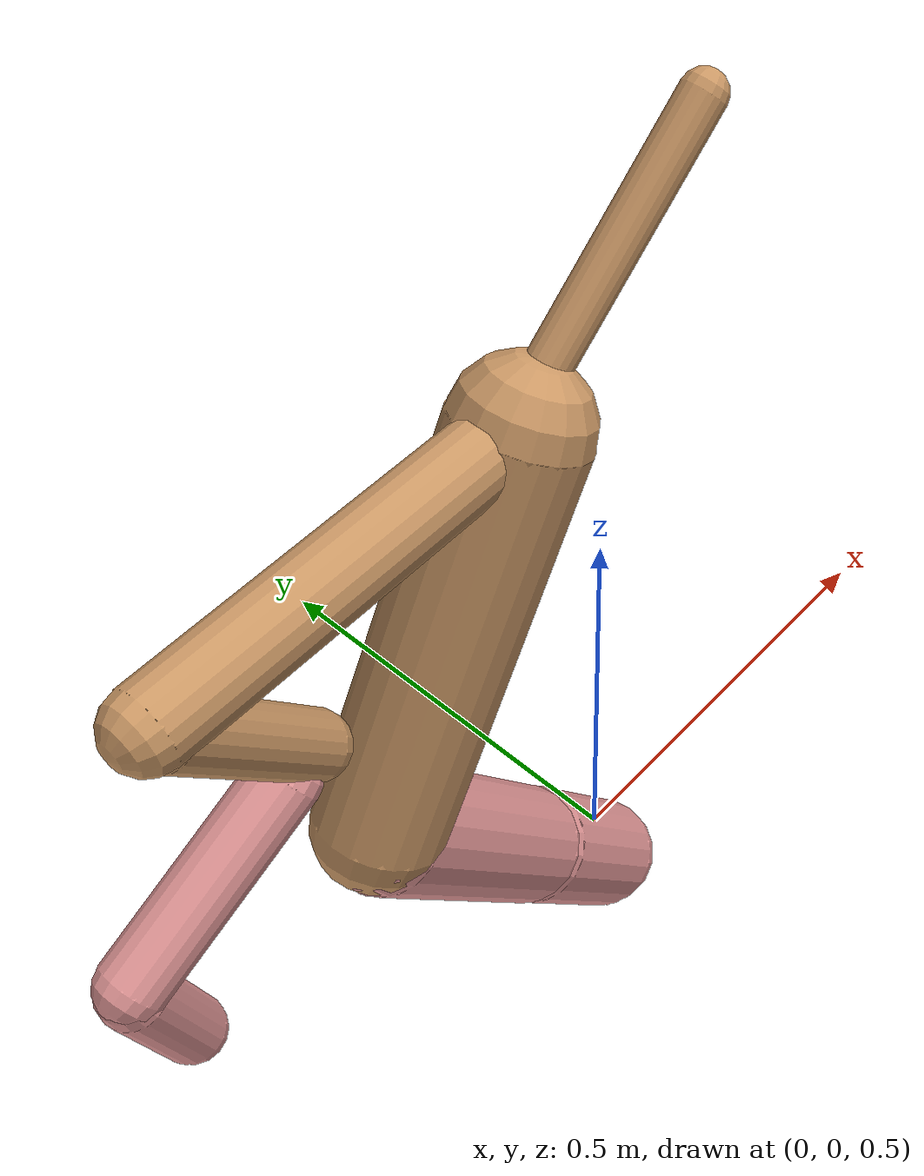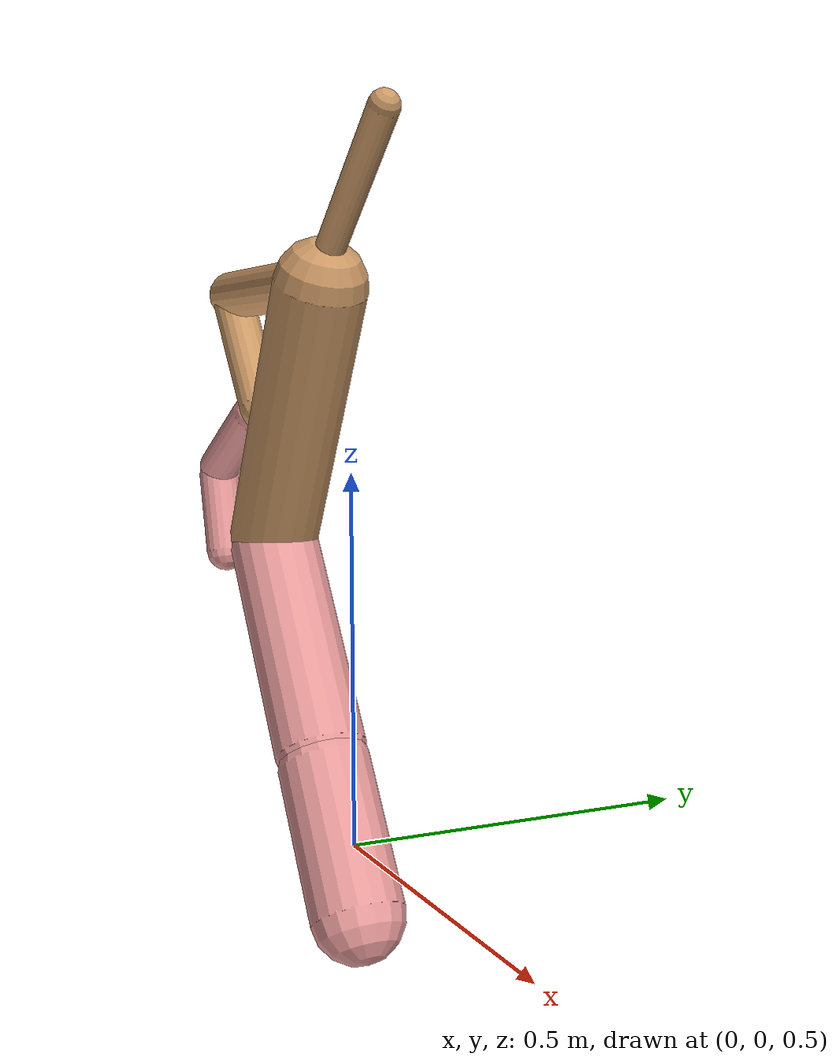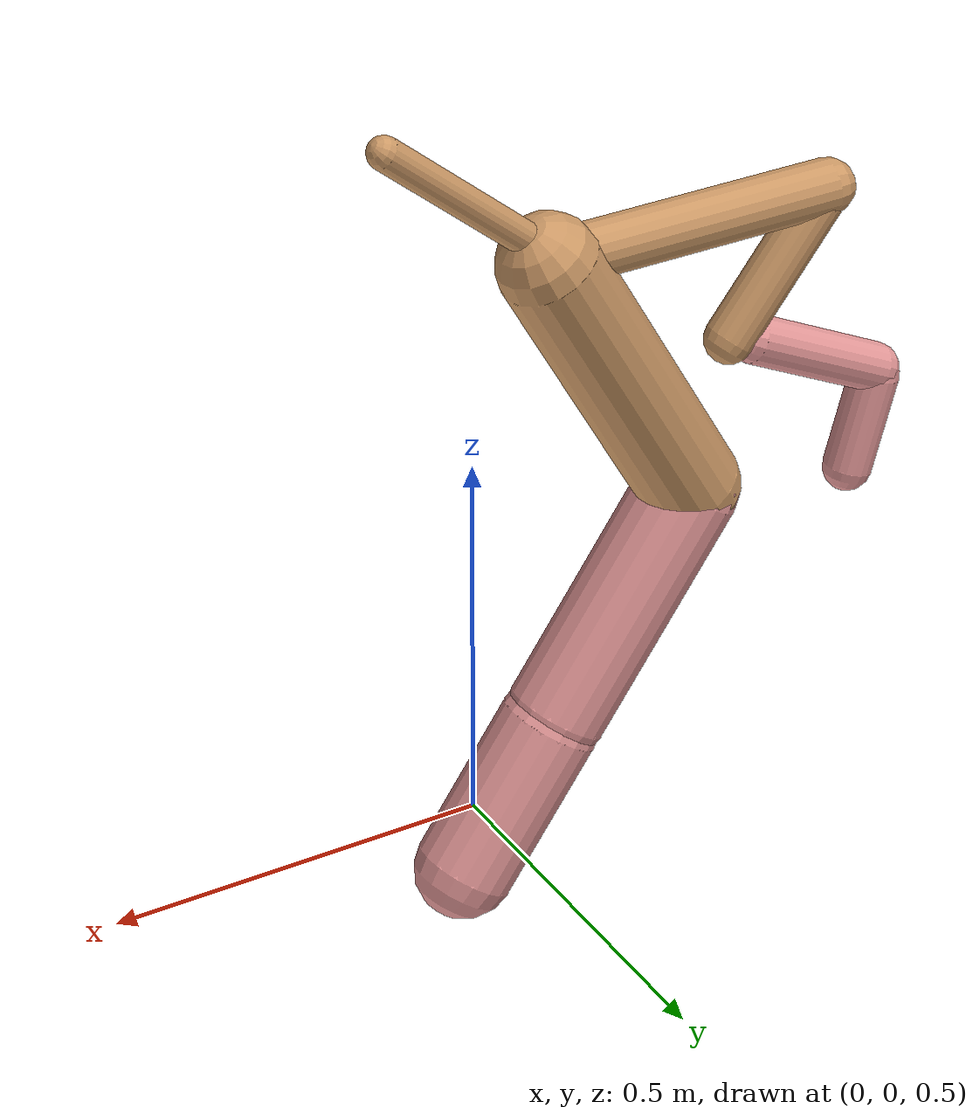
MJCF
<mujoco model="cheetah">
  <compiler angle="radian" coordinate="local" inertiafromgeom="true" settotalmass="14" />
  <default>
    <joint armature=".1" damping=".01" limited="true" solimplimit="0 .8 .03" solreflimit=".02 1" stiffness="8" />
    <geom conaffinity="0" condim="3" contype="1" friction="0.8 .1 .1" rgba="0.8 0.6 .4 1" solimp="0.0 0.8 0.01" solref="0.02 1" />
    <motor ctrllimited="true" ctrlrange="-1 1" />
  </default>
  <size nstack="300000" nuser_geom="1" />
  <option gravity="0 0 -9.81" timestep="0.01" />
  <worldbody>
    <body name="torso" pos="0.0 0.0 1.2525166890102555">
      <joint armature="0" axis="1 0 0" damping="0" limited="false" name="ignorex" pos="0 0 0" stiffness="0" type="slide" />
      <joint armature="0" axis="0 0 1" damping="0" limited="false" name="ignorez" pos="0 0 0" stiffness="0" type="slide" />
      <joint armature="0" axis="0 1 0" damping="0" limited="false" name="ignorey" pos="0 0 0" stiffness="0" type="hinge" />
      <geom fromto="-0.5 0.0 0.0 -0.1001855035595971 0.0 0.0" name="torso" size="0.03615422522904881" type="capsule" />
      <geom axisangle="0 1 0 .87" name="head" pos="-0.00018550355959712217 0.0 0.1" size="0.021040954908397146 0.15" type="capsule" />

      <body name="bthigh" pos="-.5 0 0">
        <joint axis="0 1 0" damping="6" name="bthigh" pos="0 0 0" range="-.52 1.05" stiffness="240" type="hinge" />
        <geom axisangle="0 1 0 -3.8" name="bthigh" pos="0.0734775819030384 0.0 -0.0955208564739499" size="0.0322 0.10149999999999999" type="capsule" />
        <body name="bshin" pos="0.10695516380607678 0.0 -0.18104171294789978">
          <joint axis="0 1 0" damping="4.5" name="bshin" pos="0 0 0" range="-.785 .785" stiffness="180" type="hinge" />
          <geom axisangle="0 1 0 -2.03" name="bshin" pos="-0.0997507764050038 0.0 -0.0498753882025019" rgba="0.9 0.6 0.6 1" size="0.0322 0.105" type="capsule" />
          <body name="bfoot" pos="-0.1995015528100076 0.0 -0.0997507764050038">
            <joint axis="0 1 0" damping="3" name="bfoot" pos="0 0 0" range="-.4 .785" stiffness="120" type="hinge" />
            <geom axisangle="0 1 0 -.27" name="bfoot" pos="0.021667753813597694 0.0 -0.07005907066396588" rgba="0.9 0.6 0.6 1" size="0.0322 0.0658" type="capsule" />
            <inertial mass="10" />
          </body>
        </body>
      </body>
      <body name="fthigh" pos="-0.1001855035595971 0.0 0.0">
        <joint axis="0 1 0" damping="4.5" name="fthigh" pos="0 0 0" range="-1.5 0.8" stiffness="180" type="hinge" />
        <geom axisangle="0 1 0 .52" name="fthigh" pos="-0.10873098435620548 0.0 -0.18639597318206652" size="0.06554887798130313 0.20986686154640588" type="capsule" />
        <body name="fshin" pos="-0.21746196871241097 0.0 -0.37279194636413304">
          <joint axis="0 1 0" damping="3" name="fshin" pos="0 0 0" range="-1.2 1.1" stiffness="120" type="hinge" />
          <geom axisangle="0 1 0 -.6" name="fshin" pos="0.10086850422513366 0.0 -0.13966408277326198" rgba="0.9 0.6 0.6 1" size="0.06554887798130313 0.16726231070615805" type="capsule" />
          <body name="ffoot" pos="0.20173700845026732 0.0 -0.27932816554652395">
            <joint axis="0 1 0" damping="1.5" name="ffoot" pos="0 0 0" range="-3.1 -0.3" stiffness="60" type="hinge" />
            <geom axisangle="0 1 0 -.6" name="ffoot" pos="0.06687702047455928 0.0 -0.10403092073820333" rgba="0.9 0.6 0.6 1" size="0.06554887798130313 0.110456242919161" type="capsule" />
            <inertial mass="10" />
          </body>
        </body>
      </body>
    </body>
  </worldbody>
  <actuator>
    <motor gear="120" joint="bthigh" name="bthigh" />
    <motor gear="90" joint="bshin" name="bshin" />
    <motor gear="60" joint="bfoot" name="bfoot" />
    <motor gear="120" joint="fthigh" name="fthigh" />
    <motor gear="60" joint="fshin" name="fshin" />
    <motor gear="30" joint="ffoot" name="ffoot" />
  </actuator>
</mujoco>
